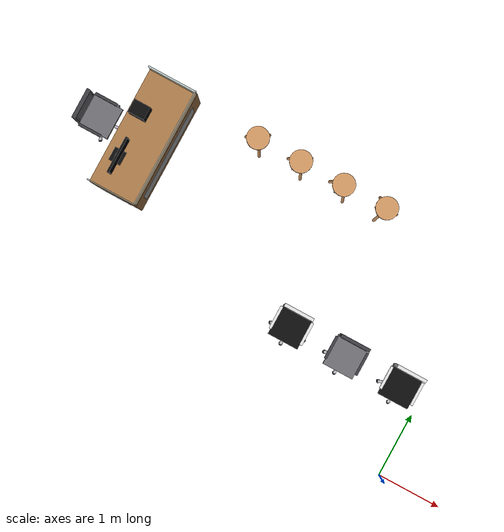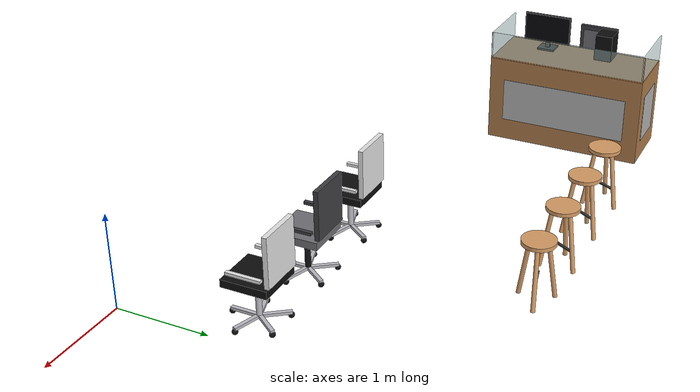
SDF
<sdf version="1.6">
 <world name="mahadev_lab">
  <include><uri>model://sun</uri></include>
  <model name="stool_left_0">
   <static>true</static>
   <pose>-3.9000 3.4500 0.0000 0.0000 0.0000 1.0904</pose>
   <link name="link">
    <visual name="v1">
     <pose>0.0000 0.0000 0.6400 0.0000 0.0000 0.0000</pose>
     <geometry><cylinder><radius>0.17</radius><length>0.04</length></cylinder></geometry>
     <material>
      <ambient>0.85 0.62 0.4 1</ambient>
      <diffuse>0.85 0.62 0.4 1</diffuse>
      <specular>0.1 0.1 0.1 1</specular>
     </material>
    </visual>
    <visual name="v2">
     <pose>0.1500 0.0000 0.3100 0.0000 -0.1599 0.0000</pose>
     <geometry><cylinder><radius>0.022</radius><length>0.63</length></cylinder></geometry>
     <material>
      <ambient>0.85 0.62 0.4 1</ambient>
      <diffuse>0.85 0.62 0.4 1</diffuse>
      <specular>0.1 0.1 0.1 1</specular>
     </material>
    </visual>
    <visual name="v3">
     <pose>-0.0750 0.1299 0.3100 0.0000 -0.1599 2.0944</pose>
     <geometry><cylinder><radius>0.022</radius><length>0.63</length></cylinder></geometry>
     <material>
      <ambient>0.85 0.62 0.4 1</ambient>
      <diffuse>0.85 0.62 0.4 1</diffuse>
      <specular>0.1 0.1 0.1 1</specular>
     </material>
    </visual>
    <visual name="v4">
     <pose>-0.0750 -0.1299 0.3100 0.0000 -0.1599 4.1888</pose>
     <geometry><cylinder><radius>0.022</radius><length>0.63</length></cylinder></geometry>
     <material>
      <ambient>0.85 0.62 0.4 1</ambient>
      <diffuse>0.85 0.62 0.4 1</diffuse>
      <specular>0.1 0.1 0.1 1</specular>
     </material>
    </visual>
    <visual name="v5">
     <pose>0.0000 0.0000 0.2200 0.0000 0.0000 0.0000</pose>
     <geometry><box><size>0.3 0.02 0.02</size></box></geometry>
     <material>
      <ambient>0.05 0.05 0.05 1</ambient>
      <diffuse>0.05 0.05 0.05 1</diffuse>
      <specular>0.1 0.1 0.1 1</specular>
     </material>
    </visual>
    <collision name="c6">
     <pose>0.0000 0.0000 0.3300 0 0 0</pose>
     <geometry><cylinder><radius>0.2</radius><length>0.66</length></cylinder></geometry>
    </collision>
   </link>
  </model>
  <model name="stool_left_1">
   <static>true</static>
   <pose>-3.2000 3.4500 0.0000 0.0000 0.0000 1.0224</pose>
   <link name="link">
    <visual name="v1">
     <pose>0.0000 0.0000 0.6400 0.0000 0.0000 0.0000</pose>
     <geometry><cylinder><radius>0.17</radius><length>0.04</length></cylinder></geometry>
     <material>
      <ambient>0.85 0.62 0.4 1</ambient>
      <diffuse>0.85 0.62 0.4 1</diffuse>
      <specular>0.1 0.1 0.1 1</specular>
     </material>
    </visual>
    <visual name="v2">
     <pose>0.1500 0.0000 0.3100 0.0000 -0.1599 0.0000</pose>
     <geometry><cylinder><radius>0.022</radius><length>0.63</length></cylinder></geometry>
     <material>
      <ambient>0.85 0.62 0.4 1</ambient>
      <diffuse>0.85 0.62 0.4 1</diffuse>
      <specular>0.1 0.1 0.1 1</specular>
     </material>
    </visual>
    <visual name="v3">
     <pose>-0.0750 0.1299 0.3100 0.0000 -0.1599 2.0944</pose>
     <geometry><cylinder><radius>0.022</radius><length>0.63</length></cylinder></geometry>
     <material>
      <ambient>0.85 0.62 0.4 1</ambient>
      <diffuse>0.85 0.62 0.4 1</diffuse>
      <specular>0.1 0.1 0.1 1</specular>
     </material>
    </visual>
    <visual name="v4">
     <pose>-0.0750 -0.1299 0.3100 0.0000 -0.1599 4.1888</pose>
     <geometry><cylinder><radius>0.022</radius><length>0.63</length></cylinder></geometry>
     <material>
      <ambient>0.85 0.62 0.4 1</ambient>
      <diffuse>0.85 0.62 0.4 1</diffuse>
      <specular>0.1 0.1 0.1 1</specular>
     </material>
    </visual>
    <visual name="v5">
     <pose>0.0000 0.0000 0.2200 0.0000 0.0000 0.0000</pose>
     <geometry><box><size>0.3 0.02 0.02</size></box></geometry>
     <material>
      <ambient>0.05 0.05 0.05 1</ambient>
      <diffuse>0.05 0.05 0.05 1</diffuse>
      <specular>0.1 0.1 0.1 1</specular>
     </material>
    </visual>
    <collision name="c6">
     <pose>0.0000 0.0000 0.3300 0 0 0</pose>
     <geometry><cylinder><radius>0.2</radius><length>0.66</length></cylinder></geometry>
    </collision>
   </link>
  </model>
  <model name="stool_left_2">
   <static>true</static>
   <pose>-2.5000 3.4500 0.0000 0.0000 0.0000 1.0558</pose>
   <link name="link">
    <visual name="v1">
     <pose>0.0000 0.0000 0.6400 0.0000 0.0000 0.0000</pose>
     <geometry><cylinder><radius>0.17</radius><length>0.04</length></cylinder></geometry>
     <material>
      <ambient>0.85 0.62 0.4 1</ambient>
      <diffuse>0.85 0.62 0.4 1</diffuse>
      <specular>0.1 0.1 0.1 1</specular>
     </material>
    </visual>
    <visual name="v2">
     <pose>0.1500 0.0000 0.3100 0.0000 -0.1599 0.0000</pose>
     <geometry><cylinder><radius>0.022</radius><length>0.63</length></cylinder></geometry>
     <material>
      <ambient>0.85 0.62 0.4 1</ambient>
      <diffuse>0.85 0.62 0.4 1</diffuse>
      <specular>0.1 0.1 0.1 1</specular>
     </material>
    </visual>
    <visual name="v3">
     <pose>-0.0750 0.1299 0.3100 0.0000 -0.1599 2.0944</pose>
     <geometry><cylinder><radius>0.022</radius><length>0.63</length></cylinder></geometry>
     <material>
      <ambient>0.85 0.62 0.4 1</ambient>
      <diffuse>0.85 0.62 0.4 1</diffuse>
      <specular>0.1 0.1 0.1 1</specular>
     </material>
    </visual>
    <visual name="v4">
     <pose>-0.0750 -0.1299 0.3100 0.0000 -0.1599 4.1888</pose>
     <geometry><cylinder><radius>0.022</radius><length>0.63</length></cylinder></geometry>
     <material>
      <ambient>0.85 0.62 0.4 1</ambient>
      <diffuse>0.85 0.62 0.4 1</diffuse>
      <specular>0.1 0.1 0.1 1</specular>
     </material>
    </visual>
    <visual name="v5">
     <pose>0.0000 0.0000 0.2200 0.0000 0.0000 0.0000</pose>
     <geometry><box><size>0.3 0.02 0.02</size></box></geometry>
     <material>
      <ambient>0.05 0.05 0.05 1</ambient>
      <diffuse>0.05 0.05 0.05 1</diffuse>
      <specular>0.1 0.1 0.1 1</specular>
     </material>
    </visual>
    <collision name="c6">
     <pose>0.0000 0.0000 0.3300 0 0 0</pose>
     <geometry><cylinder><radius>0.2</radius><length>0.66</length></cylinder></geometry>
    </collision>
   </link>
  </model>
  <model name="stool_left_3">
   <static>true</static>
   <pose>-1.8000 3.4500 0.0000 0.0000 0.0000 0.2219</pose>
   <link name="link">
    <visual name="v1">
     <pose>0.0000 0.0000 0.6400 0.0000 0.0000 0.0000</pose>
     <geometry><cylinder><radius>0.17</radius><length>0.04</length></cylinder></geometry>
     <material>
      <ambient>0.85 0.62 0.4 1</ambient>
      <diffuse>0.85 0.62 0.4 1</diffuse>
      <specular>0.1 0.1 0.1 1</specular>
     </material>
    </visual>
    <visual name="v2">
     <pose>0.1500 0.0000 0.3100 0.0000 -0.1599 0.0000</pose>
     <geometry><cylinder><radius>0.022</radius><length>0.63</length></cylinder></geometry>
     <material>
      <ambient>0.85 0.62 0.4 1</ambient>
      <diffuse>0.85 0.62 0.4 1</diffuse>
      <specular>0.1 0.1 0.1 1</specular>
     </material>
    </visual>
    <visual name="v3">
     <pose>-0.0750 0.1299 0.3100 0.0000 -0.1599 2.0944</pose>
     <geometry><cylinder><radius>0.022</radius><length>0.63</length></cylinder></geometry>
     <material>
      <ambient>0.85 0.62 0.4 1</ambient>
      <diffuse>0.85 0.62 0.4 1</diffuse>
      <specular>0.1 0.1 0.1 1</specular>
     </material>
    </visual>
    <visual name="v4">
     <pose>-0.0750 -0.1299 0.3100 0.0000 -0.1599 4.1888</pose>
     <geometry><cylinder><radius>0.022</radius><length>0.63</length></cylinder></geometry>
     <material>
      <ambient>0.85 0.62 0.4 1</ambient>
      <diffuse>0.85 0.62 0.4 1</diffuse>
      <specular>0.1 0.1 0.1 1</specular>
     </material>
    </visual>
    <visual name="v5">
     <pose>0.0000 0.0000 0.2200 0.0000 0.0000 0.0000</pose>
     <geometry><box><size>0.3 0.02 0.02</size></box></geometry>
     <material>
      <ambient>0.05 0.05 0.05 1</ambient>
      <diffuse>0.05 0.05 0.05 1</diffuse>
      <specular>0.1 0.1 0.1 1</specular>
     </material>
    </visual>
    <collision name="c6">
     <pose>0.0000 0.0000 0.3300 0 0 0</pose>
     <geometry><cylinder><radius>0.2</radius><length>0.66</length></cylinder></geometry>
    </collision>
   </link>
  </model>
  <model name="faculty_desk">
   <static>true</static>
   <pose>-5.3000 2.6500 0.0000 0.0000 0.0000 0.0000</pose>
   <link name="link">
    <visual name="v1">
     <pose>0.0000 0.0000 0.5000 0.0000 0.0000 0.0000</pose>
     <geometry><box><size>0.75 1.8 1</size></box></geometry>
     <material>
      <script>
       <uri>model://mahadev_lab_media/materials/scripts</uri>
       <uri>model://mahadev_lab_media/materials/textures</uri>
       <name>Mahadev/wood_light_2_1</name>
      </script>
     </material>
    </visual>
    <collision name="c1">
     <pose>0.0000 0.0000 0.5000 0.0000 0.0000 0.0000</pose>
     <geometry><box><size>0.75 1.8 1</size></box></geometry>
     <surface><friction><ode><mu>100</mu><mu2>100</mu2></ode></friction></surface>
    </collision>
    <visual name="v2">
     <pose>0.3790 0.0000 0.5000 0.0000 0.0000 0.0000</pose>
     <geometry><box><size>0.004 1.45 0.5</size></box></geometry>
     <material>
      <script>
       <uri>model://mahadev_lab_media/materials/scripts</uri>
       <uri>model://mahadev_lab_media/materials/textures</uri>
       <name>Mahadev/lattice_6_2</name>
      </script>
     </material>
    </visual>
    <visual name="v3">
     <pose>0.0000 -0.9040 0.5000 0.0000 0.0000 0.0000</pose>
     <geometry><box><size>0.45 0.004 0.55</size></box></geometry>
     <material>
      <script>
       <uri>model://mahadev_lab_media/materials/scripts</uri>
       <uri>model://mahadev_lab_media/materials/textures</uri>
       <name>Mahadev/lattice_2_2</name>
      </script>
     </material>
    </visual>
    <visual name="v4">
     <pose>0.0000 0.9040 0.5000 0.0000 0.0000 0.0000</pose>
     <geometry><box><size>0.45 0.004 0.55</size></box></geometry>
     <material>
      <script>
       <uri>model://mahadev_lab_media/materials/scripts</uri>
       <uri>model://mahadev_lab_media/materials/textures</uri>
       <name>Mahadev/lattice_2_2</name>
      </script>
     </material>
    </visual>
    <visual name="v5">
     <pose>0.3650 0.0000 1.1600 0.0000 0.0000 0.0000</pose>
     <geometry><box><size>0.012 1.8 0.3</size></box></geometry>
     <material>
      <ambient>0.75 0.85 0.85 1</ambient>
      <diffuse>0.75 0.85 0.85 1</diffuse>
      <specular>0.1 0.1 0.1 1</specular>
     </material>
     <transparency>0.4</transparency>
    </visual>
    <visual name="v6">
     <pose>0.0000 -0.8900 1.1600 0.0000 0.0000 0.0000</pose>
     <geometry><box><size>0.75 0.012 0.3</size></box></geometry>
     <material>
      <ambient>0.75 0.85 0.85 1</ambient>
      <diffuse>0.75 0.85 0.85 1</diffuse>
      <specular>0.1 0.1 0.1 1</specular>
     </material>
     <transparency>0.4</transparency>
    </visual>
    <visual name="v7">
     <pose>0.0000 0.8900 1.1600 0.0000 0.0000 0.0000</pose>
     <geometry><box><size>0.75 0.012 0.3</size></box></geometry>
     <material>
      <ambient>0.75 0.85 0.85 1</ambient>
      <diffuse>0.75 0.85 0.85 1</diffuse>
      <specular>0.1 0.1 0.1 1</specular>
     </material>
     <transparency>0.4</transparency>
    </visual>
    <visual name="v8">
     <pose>-0.2000 0.3000 1.1500 0.0000 0.0000 0.0000</pose>
     <geometry><box><size>0.25 0.2 0.3</size></box></geometry>
     <material>
      <ambient>0.05 0.05 0.05 1</ambient>
      <diffuse>0.05 0.05 0.05 1</diffuse>
      <specular>0.1 0.1 0.1 1</specular>
     </material>
    </visual>
    <visual name="v9">
     <pose>-0.1900 -0.4000 1.0100 0.0000 0.0000 0.0000</pose>
     <geometry><box><size>0.18 0.2 0.02</size></box></geometry>
     <material>
      <ambient>0.05 0.05 0.05 1</ambient>
      <diffuse>0.05 0.05 0.05 1</diffuse>
      <specular>0.1 0.1 0.1 1</specular>
     </material>
    </visual>
    <visual name="v10">
     <pose>-0.1900 -0.4000 1.0900 0.0000 0.0000 0.0000</pose>
     <geometry><box><size>0.03 0.05 0.16</size></box></geometry>
     <material>
      <ambient>0.05 0.05 0.05 1</ambient>
      <diffuse>0.05 0.05 0.05 1</diffuse>
      <specular>0.1 0.1 0.1 1</specular>
     </material>
    </visual>
    <visual name="v11">
     <pose>-0.1500 -0.4000 1.2650 0.0000 0.0000 0.0000</pose>
     <geometry><box><size>0.03 0.55 0.33</size></box></geometry>
     <material>
      <ambient>0.05 0.05 0.05 1</ambient>
      <diffuse>0.05 0.05 0.05 1</diffuse>
      <specular>0.1 0.1 0.1 1</specular>
     </material>
    </visual>
    <visual name="v12">
     <pose>-0.1340 -0.4000 1.2650 0.0000 0.0000 0.0000</pose>
     <geometry><box><size>0.002 0.53 0.31</size></box></geometry>
     <material>
      <ambient>0.02 0.02 0.03 1</ambient>
      <diffuse>0.02 0.02 0.03 1</diffuse>
      <specular>0.1 0.1 0.1 1</specular>
     </material>
    </visual>
   </link>
  </model>
  <model name="faculty_chair">
   <static>true</static>
   <pose>-6.0500 2.6500 0.0000 0.0000 0.0000 0.0000</pose>
   <link name="link">
    <visual name="v1">
     <pose>0.1500 0.0000 0.0600 0.0000 0.0000 0.0000</pose>
     <geometry><box><size>0.3 0.04 0.03</size></box></geometry>
     <material>
      <ambient>0.75 0.75 0.78 1</ambient>
      <diffuse>0.75 0.75 0.78 1</diffuse>
      <specular>0.1 0.1 0.1 1</specular>
     </material>
    </visual>
    <visual name="v2">
     <pose>0.2900 0.0000 0.0300 0.0000 0.0000 0.0000</pose>
     <geometry><sphere><radius>0.03</radius></sphere></geometry>
     <material>
      <ambient>0.05 0.05 0.05 1</ambient>
      <diffuse>0.05 0.05 0.05 1</diffuse>
      <specular>0.1 0.1 0.1 1</specular>
     </material>
    </visual>
    <visual name="v3">
     <pose>0.0464 0.1427 0.0600 0.0000 0.0000 1.2566</pose>
     <geometry><box><size>0.3 0.04 0.03</size></box></geometry>
     <material>
      <ambient>0.75 0.75 0.78 1</ambient>
      <diffuse>0.75 0.75 0.78 1</diffuse>
      <specular>0.1 0.1 0.1 1</specular>
     </material>
    </visual>
    <visual name="v4">
     <pose>0.0896 0.2758 0.0300 0.0000 0.0000 0.0000</pose>
     <geometry><sphere><radius>0.03</radius></sphere></geometry>
     <material>
      <ambient>0.05 0.05 0.05 1</ambient>
      <diffuse>0.05 0.05 0.05 1</diffuse>
      <specular>0.1 0.1 0.1 1</specular>
     </material>
    </visual>
    <visual name="v5">
     <pose>-0.1214 0.0882 0.0600 0.0000 0.0000 2.5133</pose>
     <geometry><box><size>0.3 0.04 0.03</size></box></geometry>
     <material>
      <ambient>0.75 0.75 0.78 1</ambient>
      <diffuse>0.75 0.75 0.78 1</diffuse>
      <specular>0.1 0.1 0.1 1</specular>
     </material>
    </visual>
    <visual name="v6">
     <pose>-0.2346 0.1705 0.0300 0.0000 0.0000 0.0000</pose>
     <geometry><sphere><radius>0.03</radius></sphere></geometry>
     <material>
      <ambient>0.05 0.05 0.05 1</ambient>
      <diffuse>0.05 0.05 0.05 1</diffuse>
      <specular>0.1 0.1 0.1 1</specular>
     </material>
    </visual>
    <visual name="v7">
     <pose>-0.1214 -0.0882 0.0600 0.0000 0.0000 3.7699</pose>
     <geometry><box><size>0.3 0.04 0.03</size></box></geometry>
     <material>
      <ambient>0.75 0.75 0.78 1</ambient>
      <diffuse>0.75 0.75 0.78 1</diffuse>
      <specular>0.1 0.1 0.1 1</specular>
     </material>
    </visual>
    <visual name="v8">
     <pose>-0.2346 -0.1705 0.0300 0.0000 0.0000 0.0000</pose>
     <geometry><sphere><radius>0.03</radius></sphere></geometry>
     <material>
      <ambient>0.05 0.05 0.05 1</ambient>
      <diffuse>0.05 0.05 0.05 1</diffuse>
      <specular>0.1 0.1 0.1 1</specular>
     </material>
    </visual>
    <visual name="v9">
     <pose>0.0464 -0.1427 0.0600 0.0000 0.0000 5.0265</pose>
     <geometry><box><size>0.3 0.04 0.03</size></box></geometry>
     <material>
      <ambient>0.75 0.75 0.78 1</ambient>
      <diffuse>0.75 0.75 0.78 1</diffuse>
      <specular>0.1 0.1 0.1 1</specular>
     </material>
    </visual>
    <visual name="v10">
     <pose>0.0896 -0.2758 0.0300 0.0000 0.0000 0.0000</pose>
     <geometry><sphere><radius>0.03</radius></sphere></geometry>
     <material>
      <ambient>0.05 0.05 0.05 1</ambient>
      <diffuse>0.05 0.05 0.05 1</diffuse>
      <specular>0.1 0.1 0.1 1</specular>
     </material>
    </visual>
    <visual name="v11">
     <pose>0.0000 0.0000 0.2700 0.0000 0.0000 0.0000</pose>
     <geometry><cylinder><radius>0.03</radius><length>0.4</length></cylinder></geometry>
     <material>
      <ambient>0.05 0.05 0.05 1</ambient>
      <diffuse>0.05 0.05 0.05 1</diffuse>
      <specular>0.1 0.1 0.1 1</specular>
     </material>
    </visual>
    <visual name="v12">
     <pose>0.0000 0.0000 0.4800 0.0000 0.0000 0.0000</pose>
     <geometry><box><size>0.48 0.48 0.08</size></box></geometry>
     <material>
      <ambient>0.45 0.45 0.47 1</ambient>
      <diffuse>0.45 0.45 0.47 1</diffuse>
      <specular>0.1 0.1 0.1 1</specular>
     </material>
    </visual>
    <visual name="v13">
     <pose>-0.2400 0.0000 0.8000 0.0000 0.0000 0.0000</pose>
     <geometry><box><size>0.05 0.46 0.52</size></box></geometry>
     <material>
      <ambient>0.25 0.25 0.27 1</ambient>
      <diffuse>0.25 0.25 0.27 1</diffuse>
      <specular>0.1 0.1 0.1 1</specular>
     </material>
    </visual>
    <visual name="v14">
     <pose>-0.2150 0.0000 0.8000 0.0000 0.0000 0.0000</pose>
     <geometry><box><size>0.01 0.38 0.42</size></box></geometry>
     <material>
      <ambient>0.45 0.45 0.47 1</ambient>
      <diffuse>0.45 0.45 0.47 1</diffuse>
      <specular>0.1 0.1 0.1 1</specular>
     </material>
    </visual>
    <visual name="v15">
     <pose>-0.0200 -0.2500 0.6200 0.0000 0.0000 0.0000</pose>
     <geometry><box><size>0.36 0.04 0.03</size></box></geometry>
     <material>
      <ambient>0.25 0.25 0.27 1</ambient>
      <diffuse>0.25 0.25 0.27 1</diffuse>
      <specular>0.1 0.1 0.1 1</specular>
     </material>
    </visual>
    <visual name="v16">
     <pose>-0.0200 0.2500 0.6200 0.0000 0.0000 0.0000</pose>
     <geometry><box><size>0.36 0.04 0.03</size></box></geometry>
     <material>
      <ambient>0.25 0.25 0.27 1</ambient>
      <diffuse>0.25 0.25 0.27 1</diffuse>
      <specular>0.1 0.1 0.1 1</specular>
     </material>
    </visual>
    <collision name="c17">
     <pose>0.0000 0.0000 0.2750 0 0 0</pose>
     <geometry><cylinder><radius>0.3</radius><length>0.55</length></cylinder></geometry>
    </collision>
   </link>
  </model>
  <model name="chair_l_0">
   <static>true</static>
   <pose>-2.2000 1.3000 0.0000 0.0000 0.0000 -1.5708</pose>
   <link name="link">
    <visual name="v1">
     <pose>0.1500 0.0000 0.0600 0.0000 0.0000 0.0000</pose>
     <geometry><box><size>0.3 0.04 0.03</size></box></geometry>
     <material>
      <ambient>0.75 0.75 0.78 1</ambient>
      <diffuse>0.75 0.75 0.78 1</diffuse>
      <specular>0.1 0.1 0.1 1</specular>
     </material>
    </visual>
    <visual name="v2">
     <pose>0.2900 0.0000 0.0300 0.0000 0.0000 0.0000</pose>
     <geometry><sphere><radius>0.03</radius></sphere></geometry>
     <material>
      <ambient>0.05 0.05 0.05 1</ambient>
      <diffuse>0.05 0.05 0.05 1</diffuse>
      <specular>0.1 0.1 0.1 1</specular>
     </material>
    </visual>
    <visual name="v3">
     <pose>0.0464 0.1427 0.0600 0.0000 0.0000 1.2566</pose>
     <geometry><box><size>0.3 0.04 0.03</size></box></geometry>
     <material>
      <ambient>0.75 0.75 0.78 1</ambient>
      <diffuse>0.75 0.75 0.78 1</diffuse>
      <specular>0.1 0.1 0.1 1</specular>
     </material>
    </visual>
    <visual name="v4">
     <pose>0.0896 0.2758 0.0300 0.0000 0.0000 0.0000</pose>
     <geometry><sphere><radius>0.03</radius></sphere></geometry>
     <material>
      <ambient>0.05 0.05 0.05 1</ambient>
      <diffuse>0.05 0.05 0.05 1</diffuse>
      <specular>0.1 0.1 0.1 1</specular>
     </material>
    </visual>
    <visual name="v5">
     <pose>-0.1214 0.0882 0.0600 0.0000 0.0000 2.5133</pose>
     <geometry><box><size>0.3 0.04 0.03</size></box></geometry>
     <material>
      <ambient>0.75 0.75 0.78 1</ambient>
      <diffuse>0.75 0.75 0.78 1</diffuse>
      <specular>0.1 0.1 0.1 1</specular>
     </material>
    </visual>
    <visual name="v6">
     <pose>-0.2346 0.1705 0.0300 0.0000 0.0000 0.0000</pose>
     <geometry><sphere><radius>0.03</radius></sphere></geometry>
     <material>
      <ambient>0.05 0.05 0.05 1</ambient>
      <diffuse>0.05 0.05 0.05 1</diffuse>
      <specular>0.1 0.1 0.1 1</specular>
     </material>
    </visual>
    <visual name="v7">
     <pose>-0.1214 -0.0882 0.0600 0.0000 0.0000 3.7699</pose>
     <geometry><box><size>0.3 0.04 0.03</size></box></geometry>
     <material>
      <ambient>0.75 0.75 0.78 1</ambient>
      <diffuse>0.75 0.75 0.78 1</diffuse>
      <specular>0.1 0.1 0.1 1</specular>
     </material>
    </visual>
    <visual name="v8">
     <pose>-0.2346 -0.1705 0.0300 0.0000 0.0000 0.0000</pose>
     <geometry><sphere><radius>0.03</radius></sphere></geometry>
     <material>
      <ambient>0.05 0.05 0.05 1</ambient>
      <diffuse>0.05 0.05 0.05 1</diffuse>
      <specular>0.1 0.1 0.1 1</specular>
     </material>
    </visual>
    <visual name="v9">
     <pose>0.0464 -0.1427 0.0600 0.0000 0.0000 5.0265</pose>
     <geometry><box><size>0.3 0.04 0.03</size></box></geometry>
     <material>
      <ambient>0.75 0.75 0.78 1</ambient>
      <diffuse>0.75 0.75 0.78 1</diffuse>
      <specular>0.1 0.1 0.1 1</specular>
     </material>
    </visual>
    <visual name="v10">
     <pose>0.0896 -0.2758 0.0300 0.0000 0.0000 0.0000</pose>
     <geometry><sphere><radius>0.03</radius></sphere></geometry>
     <material>
      <ambient>0.05 0.05 0.05 1</ambient>
      <diffuse>0.05 0.05 0.05 1</diffuse>
      <specular>0.1 0.1 0.1 1</specular>
     </material>
    </visual>
    <visual name="v11">
     <pose>0.0000 0.0000 0.2700 0.0000 0.0000 0.0000</pose>
     <geometry><cylinder><radius>0.03</radius><length>0.4</length></cylinder></geometry>
     <material>
      <ambient>0.75 0.75 0.78 1</ambient>
      <diffuse>0.75 0.75 0.78 1</diffuse>
      <specular>0.1 0.1 0.1 1</specular>
     </material>
    </visual>
    <visual name="v12">
     <pose>0.0000 0.0000 0.4800 0.0000 0.0000 0.0000</pose>
     <geometry><box><size>0.48 0.48 0.08</size></box></geometry>
     <material>
      <ambient>0.05 0.05 0.05 1</ambient>
      <diffuse>0.05 0.05 0.05 1</diffuse>
      <specular>0.1 0.1 0.1 1</specular>
     </material>
    </visual>
    <visual name="v13">
     <pose>-0.2400 0.0000 0.8000 0.0000 0.0000 0.0000</pose>
     <geometry><box><size>0.05 0.46 0.52</size></box></geometry>
     <material>
      <ambient>0.92 0.92 0.92 1</ambient>
      <diffuse>0.92 0.92 0.92 1</diffuse>
      <specular>0.1 0.1 0.1 1</specular>
     </material>
    </visual>
    <visual name="v14">
     <pose>-0.2150 0.0000 0.8000 0.0000 0.0000 0.0000</pose>
     <geometry><box><size>0.01 0.38 0.42</size></box></geometry>
     <material>
      <ambient>0.05 0.05 0.05 1</ambient>
      <diffuse>0.05 0.05 0.05 1</diffuse>
      <specular>0.1 0.1 0.1 1</specular>
     </material>
    </visual>
    <visual name="v15">
     <pose>-0.0200 -0.2500 0.6200 0.0000 0.0000 0.0000</pose>
     <geometry><box><size>0.36 0.04 0.03</size></box></geometry>
     <material>
      <ambient>0.92 0.92 0.92 1</ambient>
      <diffuse>0.92 0.92 0.92 1</diffuse>
      <specular>0.1 0.1 0.1 1</specular>
     </material>
    </visual>
    <visual name="v16">
     <pose>-0.0200 0.2500 0.6200 0.0000 0.0000 0.0000</pose>
     <geometry><box><size>0.36 0.04 0.03</size></box></geometry>
     <material>
      <ambient>0.92 0.92 0.92 1</ambient>
      <diffuse>0.92 0.92 0.92 1</diffuse>
      <specular>0.1 0.1 0.1 1</specular>
     </material>
    </visual>
    <collision name="c17">
     <pose>0.0000 0.0000 0.2750 0 0 0</pose>
     <geometry><cylinder><radius>0.3</radius><length>0.55</length></cylinder></geometry>
    </collision>
   </link>
  </model>
  <model name="chair_l_1">
   <static>true</static>
   <pose>-1.3000 1.3000 0.0000 0.0000 0.0000 -1.5708</pose>
   <link name="link">
    <visual name="v1">
     <pose>0.1500 0.0000 0.0600 0.0000 0.0000 0.0000</pose>
     <geometry><box><size>0.3 0.04 0.03</size></box></geometry>
     <material>
      <ambient>0.75 0.75 0.78 1</ambient>
      <diffuse>0.75 0.75 0.78 1</diffuse>
      <specular>0.1 0.1 0.1 1</specular>
     </material>
    </visual>
    <visual name="v2">
     <pose>0.2900 0.0000 0.0300 0.0000 0.0000 0.0000</pose>
     <geometry><sphere><radius>0.03</radius></sphere></geometry>
     <material>
      <ambient>0.05 0.05 0.05 1</ambient>
      <diffuse>0.05 0.05 0.05 1</diffuse>
      <specular>0.1 0.1 0.1 1</specular>
     </material>
    </visual>
    <visual name="v3">
     <pose>0.0464 0.1427 0.0600 0.0000 0.0000 1.2566</pose>
     <geometry><box><size>0.3 0.04 0.03</size></box></geometry>
     <material>
      <ambient>0.75 0.75 0.78 1</ambient>
      <diffuse>0.75 0.75 0.78 1</diffuse>
      <specular>0.1 0.1 0.1 1</specular>
     </material>
    </visual>
    <visual name="v4">
     <pose>0.0896 0.2758 0.0300 0.0000 0.0000 0.0000</pose>
     <geometry><sphere><radius>0.03</radius></sphere></geometry>
     <material>
      <ambient>0.05 0.05 0.05 1</ambient>
      <diffuse>0.05 0.05 0.05 1</diffuse>
      <specular>0.1 0.1 0.1 1</specular>
     </material>
    </visual>
    <visual name="v5">
     <pose>-0.1214 0.0882 0.0600 0.0000 0.0000 2.5133</pose>
     <geometry><box><size>0.3 0.04 0.03</size></box></geometry>
     <material>
      <ambient>0.75 0.75 0.78 1</ambient>
      <diffuse>0.75 0.75 0.78 1</diffuse>
      <specular>0.1 0.1 0.1 1</specular>
     </material>
    </visual>
    <visual name="v6">
     <pose>-0.2346 0.1705 0.0300 0.0000 0.0000 0.0000</pose>
     <geometry><sphere><radius>0.03</radius></sphere></geometry>
     <material>
      <ambient>0.05 0.05 0.05 1</ambient>
      <diffuse>0.05 0.05 0.05 1</diffuse>
      <specular>0.1 0.1 0.1 1</specular>
     </material>
    </visual>
    <visual name="v7">
     <pose>-0.1214 -0.0882 0.0600 0.0000 0.0000 3.7699</pose>
     <geometry><box><size>0.3 0.04 0.03</size></box></geometry>
     <material>
      <ambient>0.75 0.75 0.78 1</ambient>
      <diffuse>0.75 0.75 0.78 1</diffuse>
      <specular>0.1 0.1 0.1 1</specular>
     </material>
    </visual>
    <visual name="v8">
     <pose>-0.2346 -0.1705 0.0300 0.0000 0.0000 0.0000</pose>
     <geometry><sphere><radius>0.03</radius></sphere></geometry>
     <material>
      <ambient>0.05 0.05 0.05 1</ambient>
      <diffuse>0.05 0.05 0.05 1</diffuse>
      <specular>0.1 0.1 0.1 1</specular>
     </material>
    </visual>
    <visual name="v9">
     <pose>0.0464 -0.1427 0.0600 0.0000 0.0000 5.0265</pose>
     <geometry><box><size>0.3 0.04 0.03</size></box></geometry>
     <material>
      <ambient>0.75 0.75 0.78 1</ambient>
      <diffuse>0.75 0.75 0.78 1</diffuse>
      <specular>0.1 0.1 0.1 1</specular>
     </material>
    </visual>
    <visual name="v10">
     <pose>0.0896 -0.2758 0.0300 0.0000 0.0000 0.0000</pose>
     <geometry><sphere><radius>0.03</radius></sphere></geometry>
     <material>
      <ambient>0.05 0.05 0.05 1</ambient>
      <diffuse>0.05 0.05 0.05 1</diffuse>
      <specular>0.1 0.1 0.1 1</specular>
     </material>
    </visual>
    <visual name="v11">
     <pose>0.0000 0.0000 0.2700 0.0000 0.0000 0.0000</pose>
     <geometry><cylinder><radius>0.03</radius><length>0.4</length></cylinder></geometry>
     <material>
      <ambient>0.05 0.05 0.05 1</ambient>
      <diffuse>0.05 0.05 0.05 1</diffuse>
      <specular>0.1 0.1 0.1 1</specular>
     </material>
    </visual>
    <visual name="v12">
     <pose>0.0000 0.0000 0.4800 0.0000 0.0000 0.0000</pose>
     <geometry><box><size>0.48 0.48 0.08</size></box></geometry>
     <material>
      <ambient>0.45 0.45 0.47 1</ambient>
      <diffuse>0.45 0.45 0.47 1</diffuse>
      <specular>0.1 0.1 0.1 1</specular>
     </material>
    </visual>
    <visual name="v13">
     <pose>-0.2400 0.0000 0.8000 0.0000 0.0000 0.0000</pose>
     <geometry><box><size>0.05 0.46 0.52</size></box></geometry>
     <material>
      <ambient>0.25 0.25 0.27 1</ambient>
      <diffuse>0.25 0.25 0.27 1</diffuse>
      <specular>0.1 0.1 0.1 1</specular>
     </material>
    </visual>
    <visual name="v14">
     <pose>-0.2150 0.0000 0.8000 0.0000 0.0000 0.0000</pose>
     <geometry><box><size>0.01 0.38 0.42</size></box></geometry>
     <material>
      <ambient>0.45 0.45 0.47 1</ambient>
      <diffuse>0.45 0.45 0.47 1</diffuse>
      <specular>0.1 0.1 0.1 1</specular>
     </material>
    </visual>
    <visual name="v15">
     <pose>-0.0200 -0.2500 0.6200 0.0000 0.0000 0.0000</pose>
     <geometry><box><size>0.36 0.04 0.03</size></box></geometry>
     <material>
      <ambient>0.25 0.25 0.27 1</ambient>
      <diffuse>0.25 0.25 0.27 1</diffuse>
      <specular>0.1 0.1 0.1 1</specular>
     </material>
    </visual>
    <visual name="v16">
     <pose>-0.0200 0.2500 0.6200 0.0000 0.0000 0.0000</pose>
     <geometry><box><size>0.36 0.04 0.03</size></box></geometry>
     <material>
      <ambient>0.25 0.25 0.27 1</ambient>
      <diffuse>0.25 0.25 0.27 1</diffuse>
      <specular>0.1 0.1 0.1 1</specular>
     </material>
    </visual>
    <collision name="c17">
     <pose>0.0000 0.0000 0.2750 0 0 0</pose>
     <geometry><cylinder><radius>0.3</radius><length>0.55</length></cylinder></geometry>
    </collision>
   </link>
  </model>
  <model name="chair_l_2">
   <static>true</static>
   <pose>-0.4000 1.3000 0.0000 0.0000 0.0000 -1.5708</pose>
   <link name="link">
    <visual name="v1">
     <pose>0.1500 0.0000 0.0600 0.0000 0.0000 0.0000</pose>
     <geometry><box><size>0.3 0.04 0.03</size></box></geometry>
     <material>
      <ambient>0.75 0.75 0.78 1</ambient>
      <diffuse>0.75 0.75 0.78 1</diffuse>
      <specular>0.1 0.1 0.1 1</specular>
     </material>
    </visual>
    <visual name="v2">
     <pose>0.2900 0.0000 0.0300 0.0000 0.0000 0.0000</pose>
     <geometry><sphere><radius>0.03</radius></sphere></geometry>
     <material>
      <ambient>0.05 0.05 0.05 1</ambient>
      <diffuse>0.05 0.05 0.05 1</diffuse>
      <specular>0.1 0.1 0.1 1</specular>
     </material>
    </visual>
    <visual name="v3">
     <pose>0.0464 0.1427 0.0600 0.0000 0.0000 1.2566</pose>
     <geometry><box><size>0.3 0.04 0.03</size></box></geometry>
     <material>
      <ambient>0.75 0.75 0.78 1</ambient>
      <diffuse>0.75 0.75 0.78 1</diffuse>
      <specular>0.1 0.1 0.1 1</specular>
     </material>
    </visual>
    <visual name="v4">
     <pose>0.0896 0.2758 0.0300 0.0000 0.0000 0.0000</pose>
     <geometry><sphere><radius>0.03</radius></sphere></geometry>
     <material>
      <ambient>0.05 0.05 0.05 1</ambient>
      <diffuse>0.05 0.05 0.05 1</diffuse>
      <specular>0.1 0.1 0.1 1</specular>
     </material>
    </visual>
    <visual name="v5">
     <pose>-0.1214 0.0882 0.0600 0.0000 0.0000 2.5133</pose>
     <geometry><box><size>0.3 0.04 0.03</size></box></geometry>
     <material>
      <ambient>0.75 0.75 0.78 1</ambient>
      <diffuse>0.75 0.75 0.78 1</diffuse>
      <specular>0.1 0.1 0.1 1</specular>
     </material>
    </visual>
    <visual name="v6">
     <pose>-0.2346 0.1705 0.0300 0.0000 0.0000 0.0000</pose>
     <geometry><sphere><radius>0.03</radius></sphere></geometry>
     <material>
      <ambient>0.05 0.05 0.05 1</ambient>
      <diffuse>0.05 0.05 0.05 1</diffuse>
      <specular>0.1 0.1 0.1 1</specular>
     </material>
    </visual>
    <visual name="v7">
     <pose>-0.1214 -0.0882 0.0600 0.0000 0.0000 3.7699</pose>
     <geometry><box><size>0.3 0.04 0.03</size></box></geometry>
     <material>
      <ambient>0.75 0.75 0.78 1</ambient>
      <diffuse>0.75 0.75 0.78 1</diffuse>
      <specular>0.1 0.1 0.1 1</specular>
     </material>
    </visual>
    <visual name="v8">
     <pose>-0.2346 -0.1705 0.0300 0.0000 0.0000 0.0000</pose>
     <geometry><sphere><radius>0.03</radius></sphere></geometry>
     <material>
      <ambient>0.05 0.05 0.05 1</ambient>
      <diffuse>0.05 0.05 0.05 1</diffuse>
      <specular>0.1 0.1 0.1 1</specular>
     </material>
    </visual>
    <visual name="v9">
     <pose>0.0464 -0.1427 0.0600 0.0000 0.0000 5.0265</pose>
     <geometry><box><size>0.3 0.04 0.03</size></box></geometry>
     <material>
      <ambient>0.75 0.75 0.78 1</ambient>
      <diffuse>0.75 0.75 0.78 1</diffuse>
      <specular>0.1 0.1 0.1 1</specular>
     </material>
    </visual>
    <visual name="v10">
     <pose>0.0896 -0.2758 0.0300 0.0000 0.0000 0.0000</pose>
     <geometry><sphere><radius>0.03</radius></sphere></geometry>
     <material>
      <ambient>0.05 0.05 0.05 1</ambient>
      <diffuse>0.05 0.05 0.05 1</diffuse>
      <specular>0.1 0.1 0.1 1</specular>
     </material>
    </visual>
    <visual name="v11">
     <pose>0.0000 0.0000 0.2700 0.0000 0.0000 0.0000</pose>
     <geometry><cylinder><radius>0.03</radius><length>0.4</length></cylinder></geometry>
     <material>
      <ambient>0.75 0.75 0.78 1</ambient>
      <diffuse>0.75 0.75 0.78 1</diffuse>
      <specular>0.1 0.1 0.1 1</specular>
     </material>
    </visual>
    <visual name="v12">
     <pose>0.0000 0.0000 0.4800 0.0000 0.0000 0.0000</pose>
     <geometry><box><size>0.48 0.48 0.08</size></box></geometry>
     <material>
      <ambient>0.05 0.05 0.05 1</ambient>
      <diffuse>0.05 0.05 0.05 1</diffuse>
      <specular>0.1 0.1 0.1 1</specular>
     </material>
    </visual>
    <visual name="v13">
     <pose>-0.2400 0.0000 0.8000 0.0000 0.0000 0.0000</pose>
     <geometry><box><size>0.05 0.46 0.52</size></box></geometry>
     <material>
      <ambient>0.92 0.92 0.92 1</ambient>
      <diffuse>0.92 0.92 0.92 1</diffuse>
      <specular>0.1 0.1 0.1 1</specular>
     </material>
    </visual>
    <visual name="v14">
     <pose>-0.2150 0.0000 0.8000 0.0000 0.0000 0.0000</pose>
     <geometry><box><size>0.01 0.38 0.42</size></box></geometry>
     <material>
      <ambient>0.05 0.05 0.05 1</ambient>
      <diffuse>0.05 0.05 0.05 1</diffuse>
      <specular>0.1 0.1 0.1 1</specular>
     </material>
    </visual>
    <visual name="v15">
     <pose>-0.0200 -0.2500 0.6200 0.0000 0.0000 0.0000</pose>
     <geometry><box><size>0.36 0.04 0.03</size></box></geometry>
     <material>
      <ambient>0.92 0.92 0.92 1</ambient>
      <diffuse>0.92 0.92 0.92 1</diffuse>
      <specular>0.1 0.1 0.1 1</specular>
     </material>
    </visual>
    <visual name="v16">
     <pose>-0.0200 0.2500 0.6200 0.0000 0.0000 0.0000</pose>
     <geometry><box><size>0.36 0.04 0.03</size></box></geometry>
     <material>
      <ambient>0.92 0.92 0.92 1</ambient>
      <diffuse>0.92 0.92 0.92 1</diffuse>
      <specular>0.1 0.1 0.1 1</specular>
     </material>
    </visual>
    <collision name="c17">
     <pose>0.0000 0.0000 0.2750 0 0 0</pose>
     <geometry><cylinder><radius>0.3</radius><length>0.55</length></cylinder></geometry>
    </collision>
   </link>
  </model>
 </world>
</sdf>
